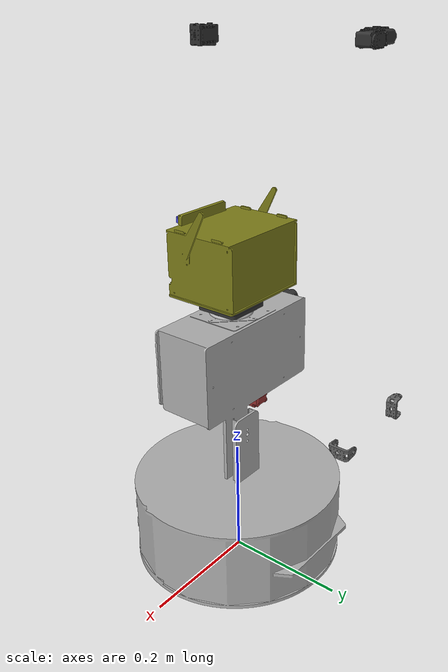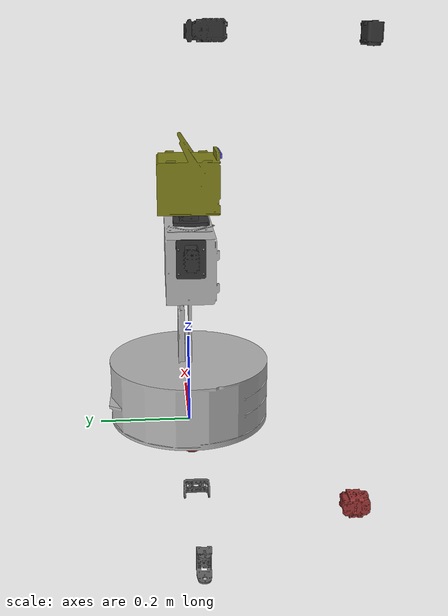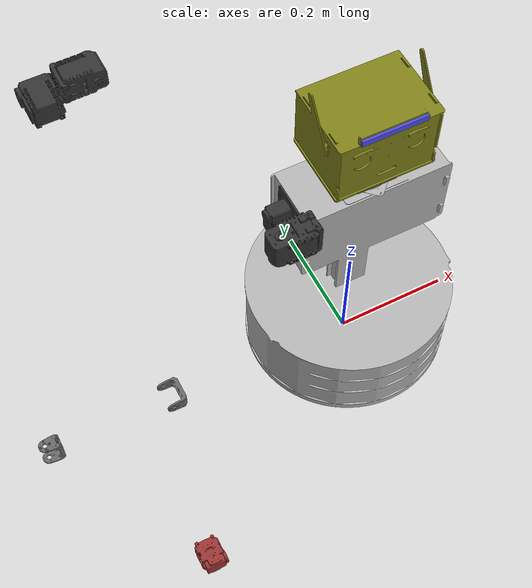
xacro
<?xml version="1.0"?>
<robot xmlns:xacro="http://www.ros.org/wiki/xacro" name="v2mini">

  <gazebo>
    <plugin name="gazebo_ros_control" filename="libgazebo_ros_control.so">
      <robotNamespace>/</robotNamespace>
    </plugin>
  </gazebo>

  <!-- materials -->
  <material name="white">
    <color rgba="0.7 0.7 0.7 1"/>
  </material>
  <material name="blue">
    <color rgba="0.3 0.3 0.9 1"/>
  </material>
  <material name="black">
    <color rgba="0.2 0.2 0.2 1"/>
  </material>
  <material name="grey">
    <color rgba="0.4 0.4 0.4 1"/>
  </material>
  <material name="yellow">
    <color rgba="0.5 0.5 0.1 1"/>
  </material>
  <material name="red">
    <color rgba="0.6 0.2 0.2 1"/>
  </material>

  <!-- v2mini body -->
  <include filename="$(find v2mini_description)/urdf/v2mini_body.urdf.xacro" />

  <!-- v2mini arm -->
  <include filename="$(find v2mini_description)/urdf/v2mini_arm.urdf.xacro" />

  <!-- v2mini head -->
  <include filename="$(find v2mini_description)/urdf/v2mini_head.urdf.xacro" />

  <!-- r200 sensor -->
  <include filename="$(find v2mini_description)/urdf/r200.urdf.xacro" />

  <!-- join the body with arm -->
  <joint name="shoulder" type="fixed">
    <parent link="torso_link"/>
    <child link="arm_link1"/>
    <origin xyz="0 0 0"/>
  </joint>

  <!-- join the body with head -->
  <joint name="neckpan" type="revolute">
    <parent link="torso_link"/>
    <child link="neck_link"/>
    <axis xyz="0 0 1"/>
    <origin xyz="0 0 0"/>
    <limit effort="10" lower="-2.9" upper="2.9" velocity="10"/>
  </joint>

  <xacro:body/>
  <xacro:arm/>
  <xacro:head/>
  <xacro:sensor_r200 parent="head_link"/>

</robot>

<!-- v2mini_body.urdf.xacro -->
<robot xmlns:xacro="http://www.ros.org/wiki/xacro" name="v2mini">

<xacro:property name="pi" value="3.14159" />

<!-- base properties -->
<xacro:property name="base_offset_z" value="0.0192" />
<xacro:property name="base_collision_height" value="0.132" />
<xacro:property name="base_collision_radius" value="0.175" />

<!-- wheel properties -->
<xacro:property name="wheel_radius" value="0.03" />
<xacro:property name="wheel_offset_radial" value="0.1405" />

<!-- torso properties -->
<xacro:property name="torso_offset_z" value="0.175" />
<xacro:property name="torso_width" value="0.2373" />

<xacro:macro name="body">

  <!-- **** BASE **** -->

  <link name="base_link">
    <!-- fake inertial values -->
    <inertial>
      <mass value="10"/>
      <inertia ixx="100" ixy="0" ixz="0" iyy="100" iyz="0" izz="100" />
      <origin/>
    </inertial>

    <visual>
      <origin xyz="0 0 ${base_offset_z}" rpy="0 0 0" />
      <geometry>
        <mesh filename="package://v2mini_description/meshes/base/base.stl" />
      </geometry>
      <material name="white"/>
    </visual>

    <collision>
      <origin xyz="0 0 ${base_collision_height/2}" rpy="0 0 0" />
      <geometry>
        <cylinder length="${base_collision_height}" radius="${base_collision_radius}"/>
      </geometry>
    </collision>

  </link>

  <xacro:wheel prefix="front" reflect="-1" rotate="0" front_set="1"/>
  <xacro:wheel prefix="back" reflect="1" rotate="2" front_set="1"/>
  <xacro:wheel prefix="right" reflect="-1" rotate="-1" front_set="0"/>
  <xacro:wheel prefix="left" reflect="1" rotate="1" front_set="0"/>

  <!-- **** TORSO **** -->

  <link name="torso_link">
    <!-- fake inertial values -->
    <inertial>
      <mass value="5"/>
      <inertia ixx="100" ixy="0" ixz="0" iyy="100" iyz="0" izz="100" />
      <origin/>
    </inertial>
    <visual>
      <origin xyz="0 0 0" rpy="0 0 0" />
      <geometry>
        <mesh filename="package://v2mini_description/meshes/torso/torso.stl" />
      </geometry>
      <material name="white"/>
    </visual>
  </link>

  <joint name="torso_slide" type="prismatic">
    <parent link="base_link"/>
    <child link="torso_link"/>
    <origin xyz="0 0 ${base_offset_z}"/>
    <axis xyz="0 0 1"/>
    <limit effort="10" lower="-0.09" upper="0" velocity="0.5"/>
  </joint>

</xacro:macro>

<!-- Macro for creating base wheels -->
<xacro:macro name="wheel" params="prefix reflect rotate front_set">

  <link name="${prefix}_wheel">
    <visual>
      <origin xyz="0 0 0" rpy="0 0 ${pi/2*rotate}"/>
      <geometry>
        <mesh filename="package://v2mini_description/meshes/base/base_wheel.stl" />
      </geometry>
      <material name="red"/>
    </visual>
     <inertial>
       <origin xyz="0 0 0" rpy="0 0 0"/>
       <mass value="1"/>
       <inertia ixx="1.0" ixy="0.0" ixz="0.0" iyy="1.0" iyz="0.0" izz="1.0"/>
    </inertial>

  </link>

  <joint name="${prefix}_axel" type="continuous">
    <parent link="base_link"/>
    <child link="${prefix}_wheel"/>
    <origin xyz="${wheel_offset_radial*reflect*(1-front_set)} ${wheel_offset_radial*reflect*front_set} ${wheel_radius}"/>
    <axis xyz="${1-front_set} ${front_set} 0"/>
  </joint>

</xacro:macro>

</robot>

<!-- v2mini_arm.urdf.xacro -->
<robot xmlns:xacro="http://www.ros.org/wiki/xacro" name="v2mini">

<xacro:property name="pi" value="3.14159" />

<xacro:property name="base_offsetx" value="-0.158825" />
<xacro:property name="base_offsety" value="-0.002" />
<xacro:property name="base_offsetz" value="0.407507" />

<xacro:macro name="arm">

  <link name="arm_link1">
    <visual>
      <origin xyz="0 0 0" rpy="0 0 0" />
      <geometry>
        <mesh filename="package://v2mini_description/meshes/arm/arm_link1.stl" />
      </geometry>
      <material name="black"/>
    </visual>
    <collision>
      <origin xyz="0 0 0" rpy="0 0 0"/>
      <geometry>
         <mesh filename="package://v2mini_description/meshes/arm/arm_link1.stl" />
      </geometry>
    </collision>
    <inertial>
       <origin xyz="0 0 0" rpy="0 0 0"/>
       <mass value="0.01"/>
       <inertia ixx="1.0" ixy="0.0" ixz="0.0" iyy="1.0" iyz="0.0" izz="1.0"/>
    </inertial>
  </link>

  <!-- first additional joint at offset -->

  <link name="arm_link2">
    <visual>
      <origin xyz="0 0 0" rpy="0 ${pi} 0" />
      <geometry>
        <mesh filename="package://v2mini_description/meshes/arm/arm_link2.stl" />
      </geometry>
      <material name="grey"/>
    </visual>
    <collision>
       <origin xyz="0 0 0" rpy="0 ${pi} 0"/>
       <geometry>
            <mesh filename="package://v2mini_description/meshes/arm/arm_link2.stl" />
       </geometry>
    </collision>
   <inertial>
       <origin xyz="0 0 0" rpy="0 0 0"/>
       <mass value="0.01"/>
       <inertia ixx="1.0" ixy="0.0" ixz="0.0" iyy="1.0" iyz="0.0" izz="1.0"/>
    </inertial>

  </link>

  <joint name="arm_joint1" type="revolute">
    <parent link="arm_link1"/>
    <child link="arm_link2"/>
    <origin xyz="${base_offsetx} ${base_offsety} ${base_offsetz}" rpy="${pi} ${pi} 0"/>
    <limit effort="1000.0" lower="-0.2" upper="2.85" velocity="0.1"/>
  </joint>

  <xacro:arm_link num="3" mat="black" par_num="2" axis="-1 0 0" offset="0.026 0 0" j_rpy="${pi/2} 0 ${3*pi/2}" l_rpy="0 ${-pi/2}  ${-pi/2}" limit_low="-0.3" limit_high="1.6"/>

  <xacro:arm_link num="4" mat="grey" par_num="3" axis="1 0 0" offset=" 0 0 -0.0855" j_rpy="0 ${pi/2} 0" l_rpy="${pi/2} ${pi}  0" limit_low="-3"  limit_high="3"/>

  <xacro:arm_link num="5" mat="black" par_num="4" axis="-1 0 0" offset="0.026 0 0" j_rpy=" ${-pi/2} 0 ${pi/2}" l_rpy="${-pi/2} 0 ${-pi/2}" limit_low="-1.5" limit_high="1.5"/>

  <xacro:arm_link num="6" mat="red" par_num="5" axis="-1 0 0" offset="0  0 -0.0415" j_rpy="${-pi/2} ${-pi/2} 0" l_rpy="${pi/2} ${pi/2} 0" limit_low="-3"  limit_high="3"/>

  <joint name="ee_joint" type="fixed">
      <parent link="arm_link6"/>
      <child link="ee_link"/>
      <origin xyz="0 0 0" rpy="0 0 0"/>
  </joint>

  <!-- Add end effector -->
  <link name="ee_link">
  <collision>
      <geometry>
          <box size="0.01 0.01 0.01"/>
      </geometry>
     <origin rpy="0 0 0" xyz="0 0 0"/>
  </collision>
   <inertial>
       <origin xyz="0 0 0" rpy="0 0 0"/>
       <mass value="1"/>
       <inertia ixx="1.0" ixy="0.0" ixz="0.0" iyy="1.0" iyz="0.0" izz="1.0"/>
    </inertial>
  </link>

</xacro:macro>

<!-- macro for the rest of the links -->
<xacro:macro name="arm_link" params="num mat par_num axis offset j_rpy l_rpy limit_low limit_high ">

  <link name="arm_link${num}">
    <visual>
      <origin xyz="0 0 0" rpy="${l_rpy}" />
      <geometry>
        <mesh filename="package://v2mini_description/meshes/arm/arm_link${num}.stl" />
      </geometry>
      <material name="${mat}"/>
    </visual>
    <collision>
        <origin xyz="0 0 0" rpy="${l_rpy}"/>
        <geometry>
            <mesh filename="package://v2mini_description/meshes/arm/arm_link${num}.stl" />
        </geometry>
    </collision>
    <inertial>
       <origin xyz="0 0 0" rpy="0 0 0"/>
       <mass value="0.01"/>
       <inertia ixx="1.0" ixy="0.0" ixz="0.0" iyy="1.0" iyz="0.0" izz="1.0"/>
    </inertial>
  </link>

  <joint name="arm_joint${par_num}" type="revolute">
    <parent link="arm_link${par_num}"/>
    <child link="arm_link${num}"/>
    <origin xyz="${offset}" rpy="${j_rpy}"/>
    <axis xyz="${axis}"/>
    <limit effort="1000.0" lower="${limit_low}" upper="${limit_high}" velocity="0.1"/>
  </joint>

</xacro:macro>

</robot>

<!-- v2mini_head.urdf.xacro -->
<robot xmlns:xacro="http://www.ros.org/wiki/xacro" name="v2mini">

<xacro:property name="head_offset_z" value="0.495215" />

<xacro:macro name="head">

  <link name="neck_link">
    <visual>
      <origin xyz="0 0 0" rpy="0 0 0" />
      <geometry>
        <mesh filename="package://v2mini_description/meshes/head/neck.stl" />
      </geometry>
      <material name="black"/>
    </visual>
     <inertial>
       <origin xyz="0 0 0" rpy="0 0 0"/>
       <mass value="1"/>
       <inertia ixx="1.0" ixy="0.0" ixz="0.0" iyy="1.0" iyz="0.0" izz="1.0"/>
    </inertial>
  </link>

  <link name="head_link">
    <visual>
      <origin xyz="0 0 0" rpy="0 0 0" />
      <geometry>
        <mesh filename="package://v2mini_description/meshes/head/head.stl" />
      </geometry>
      <material name="yellow"/>
    </visual>
     <inertial>
       <origin xyz="0 0 0" rpy="0 0 0"/>
       <mass value="1"/>
       <inertia ixx="1.0" ixy="0.0" ixz="0.0" iyy="1.0" iyz="0.0" izz="1.0"/>
    </inertial>
  </link>

  <joint name="neck_tilt" type="revolute">
    <parent link="neck_link"/>
    <child link="head_link"/>
    <axis xyz="1 0 0"/>
    <origin xyz="0 0 ${head_offset_z}"/>
    <limit effort="1000.0" lower="0.3" upper="-0.5" velocity="0.1"/>
  </joint>

</xacro:macro>

</robot>

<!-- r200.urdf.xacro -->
<robot xmlns:xacro="http://www.ros.org/wiki/xacro" name="v2mini">

   <xacro:property name="pi" value="3.14159" />
   <xacro:property name="camera_offset_z" value="0.0877" />

   <xacro:macro name="sensor_r200" params="parent">

      <link name="camera_link">
         <visual>
          <origin xyz="0 0 0"/>
           <geometry>
            <box size="0.102 0.0038 0.0095"/>
           </geometry>
           <material name="blue"/>
         </visual>
      </link>

      <joint name="camera_joint" type="fixed">
         <origin xyz="0 -0.0668 ${camera_offset_z}" rpy="0 0 0"/>
         <parent link="${parent}"/>
         <child link="camera_link" />
      </joint>

      <link name="camera_rgb_frame"/>
      <link name="camera_rgb_optical_frame"/>
      <link name="camera_depth_optical_frame"/>
      <link name="camera_depth_frame"/>

      <joint name="camera_rgb_joint" type="fixed">
         <origin xyz="0 0 0" rpy="${-pi/2} 0 0"/>
         <parent link="camera_link"/>
         <child link="camera_rgb_frame" />
       </joint>

       <joint name="camera_rgb_optical_joint" type="fixed">
         <origin xyz="0 0 0" rpy="0 0 0" />
         <parent link="camera_rgb_frame" />
         <child link="camera_rgb_optical_frame" />
       </joint>

       <joint name="camera_depth_joint" type="fixed">
         <origin xyz="0 0 0" rpy="0 0 0" />
         <parent link="camera_rgb_frame" />
         <child link="camera_depth_frame" />
       </joint>

       <joint name="camera_depth_optical_joint" type="fixed">
         <origin xyz="0 0 0" rpy="${-pi/2} 0 0" />
         <parent link="camera_depth_frame" />
         <child link="camera_depth_optical_frame" />
       </joint>

    </xacro:macro>

</robot>
